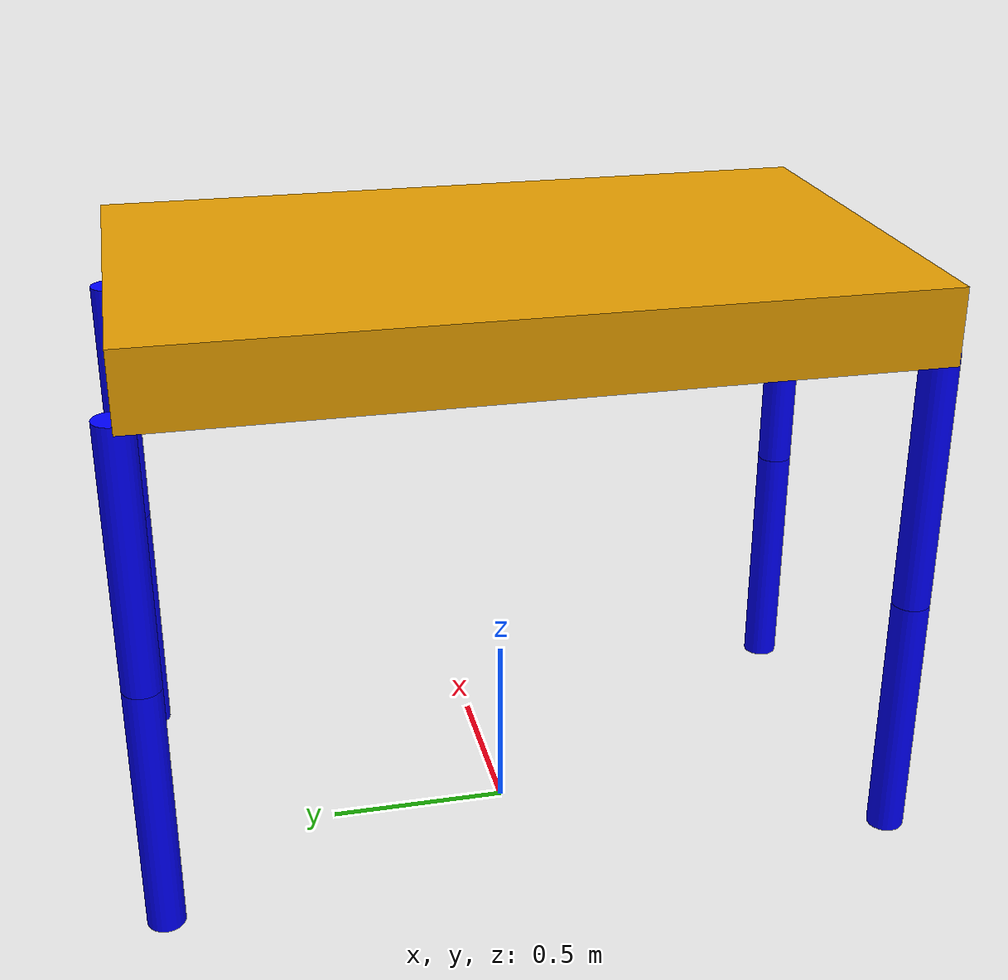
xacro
<?xml version="1.0"?>
<robot name="cartest"
    xmlns:controller="http://playerstage.sourceforge.net/gazebo/xmlschema/#controller"
    xmlns:interface="http://playerstage.sourceforge.net/gazebo/xmlschema/#interface"
    xmlns:sensor="http://playerstage.sourceforge.net/gazebo/xmlschema/#sensor"
    xmlns:xacro="http://ros.org/wiki/xacro">
    <link name="body">
        <visual>
            <origin xyz="0 0 1.6" rpy="0 0 0" />
            <geometry>
                <box size="1.2  2  0.2" />
            </geometry>
        </visual>
        <collision>
            <origin xyz="0 0 1.6" rpy="0 0 0" />
            <geometry>
                <box size="1.2  2  0.2" />
            </geometry>
        </collision>
        <inertial>
            <mass value="8.0"/>
            <inertia ixx="0.4" ixy="0.0" ixz="0.0" iyy="0.4" iyz="0.0" izz="0.2"/>
        </inertial>
    </link>
    <xacro:macro name="leg" params="linkName xyz rpy">
       <joint name="base_to_${linkName}" type="continuous">
            <origin xyz="${xyz}" rpy="${rpy}" />
            <axis xyz="0 1 0" />
            <parent link="body"/>
            <child link="up_${linkName}"/>
            <calibration rising="0.0"/>
            <limit effort="2000.0" lower="0.0" upper="2000.548" velocity="0.7"/>
            <safety_controller k_velocity="10" k_position="15" soft_lower_limit="-2.0" soft_upper_limit="0.5" />
            <dynamics damping="0.2"/>
        </joint>
        <link name="up_${linkName}">
            <visual>
                <origin xyz="0 0 -0.35" rpy="0 0 0" />
                <geometry>
                    <cylinder length="0.7" radius="0.05"/>
                </geometry>
                <material name = "white">
                    <color rgba = "0 0 1 1"/>
                </material>
            </visual>
            <collision name="collision_${linkName}">
                <origin xyz="0 0 -0.35" rpy="0 0 0" />
                <geometry>
                    <cylinder length="0.7" radius="0.05"/>
                </geometry>
            </collision>
            <inertial>
                <mass value="0.4"/>
                <inertia ixx="0.4" ixy="0.0" ixz="0.0" iyy="0.4" iyz="0.0" izz="0.2"/>
            </inertial>
        </link>
        <joint name="joint_${linkName}" type="continuous">
            <origin xyz="0 0 -0.7" rpy="0 0 0" />
            <parent link="up_${linkName}"/>
            <child link="down_${linkName}"/>
            <calibration rising="0.0"/>
            <limit effort="2000.0" lower="0.0" upper="2000.548" velocity="0.7"/>
            <safety_controller k_velocity="10" k_position="15" soft_lower_limit="-2.0" soft_upper_limit="0.5" />
            <dynamics damping="0.2"/>
        </joint>
        <link name="down_${linkName}">
            <visual>
                <origin xyz="0 0 -0.35" rpy="0 0 0" />
                <geometry>
                    <cylinder length="0.7" radius="0.05"/>
                </geometry>
                <material name = "white">
                    <color rgba = "0 0 1 1"/>
                </material>
            </visual>
            <collision name="collision_${linkName}">
                <origin xyz="0 0 -0.35" rpy="0 0 0" />
                <geometry>
                    <cylinder length="0.7" radius="0.05"/>
                </geometry>
            </collision>
            <inertial>
                <mass value="0.4"/>
                <inertia ixx="0.4" ixy="0.0" ixz="0.0" iyy="0.4" iyz="0.0" izz="0.2"/>
            </inertial>
        </link>
        <gazebo reference="up_${linkName}">
            <material>Gazebo/blue</material>
        </gazebo>
        <gazebo reference="down_${linkName}">
            <material>Gazebo/blue</material>
        </gazebo>
        <transmission name="tran${linkName}">
            <type>transmission_interface/SimpleTransmission</type>
            <joint name="base_to_${linkName}">
                <hardwareInterface>hardware_interface/VelocityJointInterface</hardwareInterface>
            </joint>
            <actuator name="joint_${linkName}">
                <hardwareInterface>hardware_interface/VelocityJointInterface</hardwareInterface>
                <mechanicalReduction>1</mechanicalReduction>
            </actuator>
        </transmission>
        <transmission name="tran${linkName}">
            <type>transmission_interface/SimpleTransmission</type>
            <joint name="joint_${linkName}">
                <hardwareInterface>hardware_interface/VelocityJointInterface</hardwareInterface>
            </joint>
            <actuator name="motor_joint_${linkName}">
                <hardwareInterface>hardware_interface/VelocityJointInterface</hardwareInterface>
                <mechanicalReduction>1</mechanicalReduction>
            </actuator>
        </transmission>
    </xacro:macro>
    <xacro:leg linkName="leftup" xyz="-0.5 1 1.5" rpy ="0 0 1.57"/>
    <xacro:leg linkName="leftdown" xyz="-0.5 -1 1.5" rpy ="0 0 1.57"/>
    <xacro:leg linkName="rightup" xyz="0.5 1 1.5" rpy ="0 0 1.57"/>
    <xacro:leg linkName="rightdown" xyz="0.5 -1 1.5" rpy ="0 0 1.57"/>
    <gazebo>
        <plugin name="gazebo_ros_control" filename="libgazebo_ros_control.so">
            <robotNamespace>/</robotNamespace>
        </plugin>
    </gazebo>
</robot>
